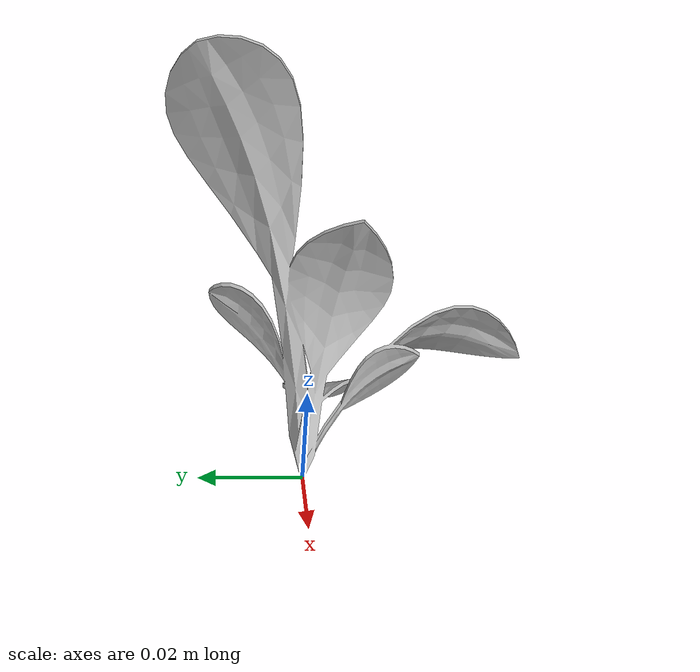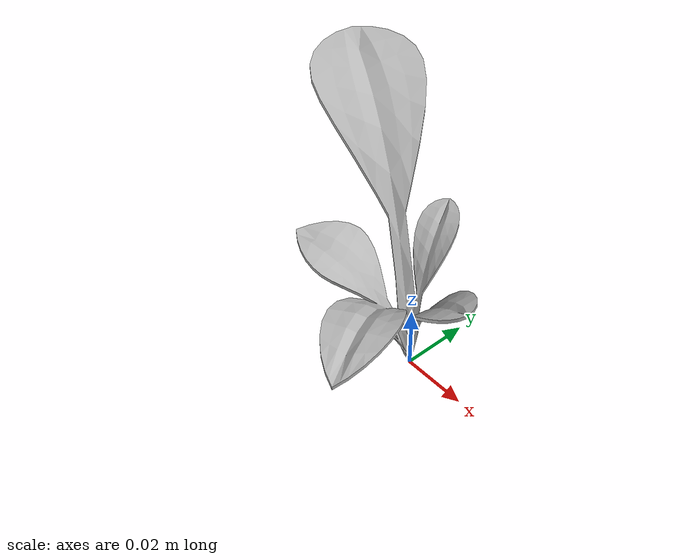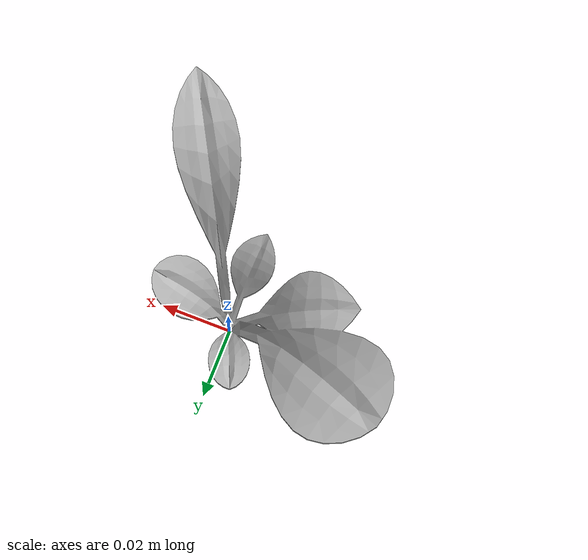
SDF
<sdf version="1.6">
  <model name="sugar_beet_24">
    <static>true</static>
    <link name="body">
      <visual name="visual">
        <geometry>
          <mesh>
            <uri>file:///sugar_beet_24/media/sugar_beet.dae</uri>
          </mesh>
        </geometry>
      </visual>
    </link>
  </model>
</sdf>
